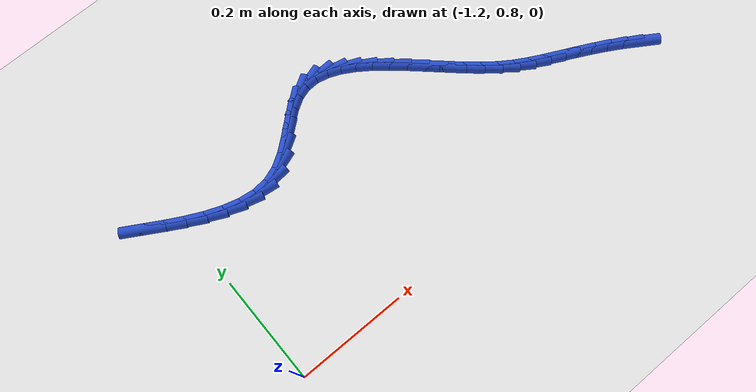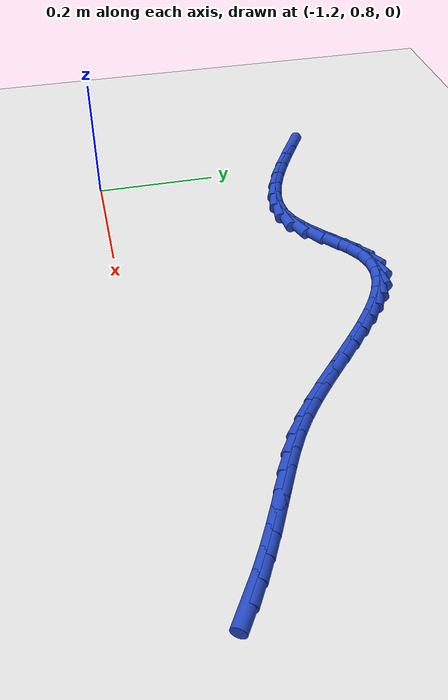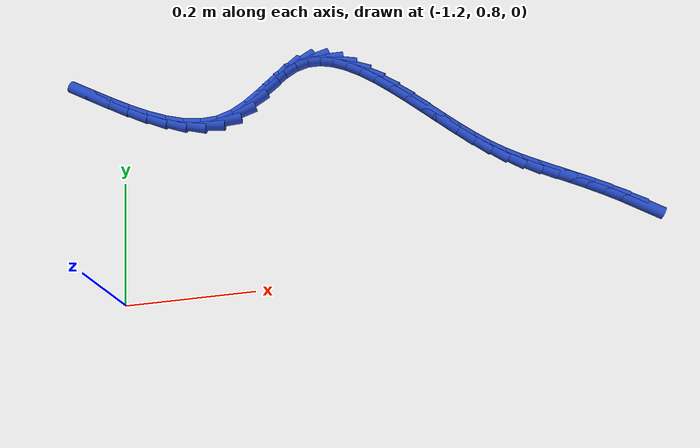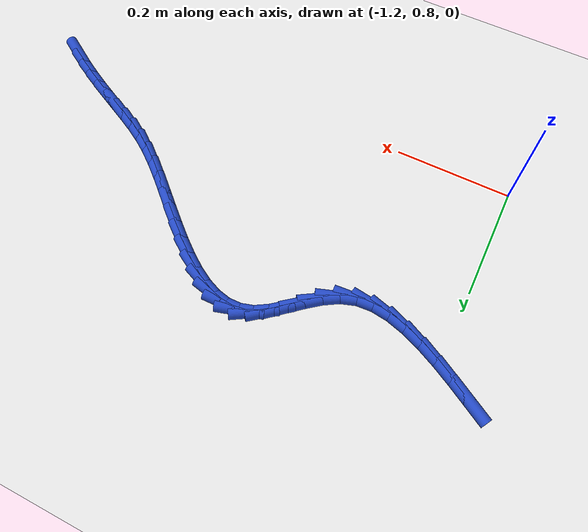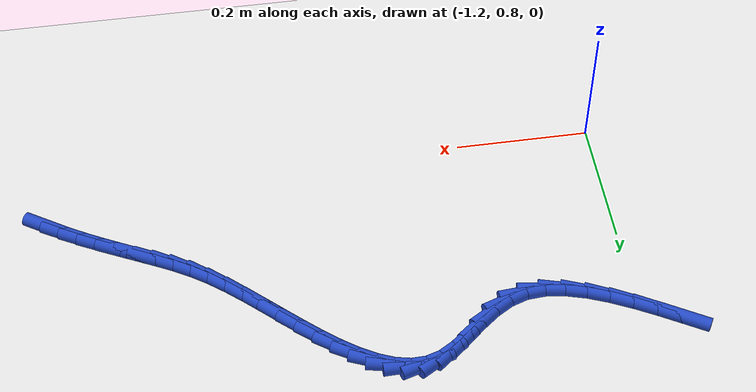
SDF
<sdf version="1.6">
 <world name="default">
  <model name="ground_plane">
   <static>1</static>
   <link name="link">
    <collision name="collision">
     <geometry><plane><normal>0 0 1</normal><size>100 100</size></plane></geometry>
     <surface><friction><ode><mu>100</mu><mu2>50</mu2></ode></friction></surface>
    </collision>
    <visual name="visual">
     <cast_shadows>0</cast_shadows>
     <geometry><plane><normal>0 0 1</normal><size>100 100</size></plane></geometry>
     <material>
      <script><uri>file://media/materials/scripts/gazebo.material</uri><name>Gazebo/WhiteGlow</name></script>
     </material>
    </visual>
   </link>
  </model>
  <model name="line">
   <link name="link_36">
    <pose>-0.3799179649079465 0.8738806881829176 0.01 0 1.57 -0.5674051294833872</pose>
    <collision name="collision">
     <geometry><cylinder><radius>0.01</radius><length>0.08</length></cylinder></geometry>
    </collision>
    <visual name="visual">
     <material>
      <script><name>Gazebo/Blue</name><uri>file://media/materials/scripts/gazebo.material</uri></script>
     </material>
     <geometry><cylinder><radius>0.01</radius><length>0.08</length></cylinder></geometry>
    </visual>
   </link>
   <link name="link_37">
    <pose>-0.40465385329061176 0.8896452080757851 0.01 0 1.57 -0.5234571785244676</pose>
    <collision name="collision">
     <geometry><cylinder><radius>0.01</radius><length>0.08</length></cylinder></geometry>
    </collision>
    <visual name="visual">
     <material>
      <script><name>Gazebo/Blue</name><uri>file://media/materials/scripts/gazebo.material</uri></script>
     </material>
     <geometry><cylinder><radius>0.01</radius><length>0.08</length></cylinder></geometry>
    </visual>
   </link>
   <link name="link_38">
    <pose>-0.4303129833699673 0.90445466978659 0.01 0 1.57 -0.49140213225383594</pose>
    <collision name="collision">
     <geometry><cylinder><radius>0.01</radius><length>0.08</length></cylinder></geometry>
    </collision>
    <visual name="visual">
     <material>
      <script><name>Gazebo/Blue</name><uri>file://media/materials/scripts/gazebo.material</uri></script>
     </material>
     <geometry><cylinder><radius>0.01</radius><length>0.08</length></cylinder></geometry>
    </visual>
   </link>
   <link name="link_39">
    <pose>-0.4564345415509868 0.9184346805827381 0.01 0 1.57 -0.47019734979528466</pose>
    <collision name="collision">
     <geometry><cylinder><radius>0.01</radius><length>0.08</length></cylinder></geometry>
    </collision>
    <visual name="visual">
     <material>
      <script><name>Gazebo/Blue</name><uri>file://media/materials/scripts/gazebo.material</uri></script>
     </material>
     <geometry><cylinder><radius>0.01</radius><length>0.08</length></cylinder></geometry>
    </visual>
   </link>
   <link name="link_40">
    <pose>-0.4825577142386427 0.9317108477316346 0.01 0 1.57 -0.45946007573270226</pose>
    <collision name="collision">
     <geometry><cylinder><radius>0.01</radius><length>0.08</length></cylinder></geometry>
    </collision>
    <visual name="visual">
     <material>
      <script><name>Gazebo/Blue</name><uri>file://media/materials/scripts/gazebo.material</uri></script>
     </material>
     <geometry><cylinder><radius>0.01</radius><length>0.08</length></cylinder></geometry>
    </visual>
   </link>
   <link name="link_41">
    <pose>-0.5082216878379086 0.9444087785006853 0.01 0 1.57 -0.46028715344471816</pose>
    <collision name="collision">
     <geometry><cylinder><radius>0.01</radius><length>0.08</length></cylinder></geometry>
    </collision>
    <visual name="visual">
     <material>
      <script><name>Gazebo/Blue</name><uri>file://media/materials/scripts/gazebo.material</uri></script>
     </material>
     <geometry><cylinder><radius>0.01</radius><length>0.08</length></cylinder></geometry>
    </visual>
   </link>
   <link name="link_42">
    <pose>-0.5330084450096235 0.9566982128504474 0.01 0 1.57 -0.4823046942819314</pose>
    <collision name="collision">
     <geometry><cylinder><radius>0.01</radius><length>0.08</length></cylinder></geometry>
    </collision>
    <visual name="visual">
     <material>
      <script><name>Gazebo/Blue</name><uri>file://media/materials/scripts/gazebo.material</uri></script>
     </material>
     <geometry><cylinder><radius>0.01</radius><length>0.08</length></cylinder></geometry>
    </visual>
   </link>
   <link name="link_43">
    <pose>-0.5569887793671398 0.9692529662345301 0.01 0 1.57 -0.5304118967696</pose>
    <collision name="collision">
     <geometry><cylinder><radius>0.01</radius><length>0.08</length></cylinder></geometry>
    </collision>
    <visual name="visual">
     <material>
      <script><name>Gazebo/Blue</name><uri>file://media/materials/scripts/gazebo.material</uri></script>
     </material>
     <geometry><cylinder><radius>0.01</radius><length>0.08</length></cylinder></geometry>
    </visual>
   </link>
   <link name="link_44">
    <pose>-0.5805447659667639 0.9830678562159035 0.01 0 1.57 -0.5993380845933235</pose>
    <collision name="collision">
     <geometry><cylinder><radius>0.01</radius><length>0.08</length></cylinder></geometry>
    </collision>
    <visual name="visual">
     <material>
      <script><name>Gazebo/Blue</name><uri>file://media/materials/scripts/gazebo.material</uri></script>
     </material>
     <geometry><cylinder><radius>0.01</radius><length>0.08</length></cylinder></geometry>
    </visual>
   </link>
   <link name="link_45">
    <pose>-0.6040610722466377 0.9991333860037775 0.01 0 1.57 -0.667412638063135</pose>
    <collision name="collision">
     <geometry><cylinder><radius>0.01</radius><length>0.08</length></cylinder></geometry>
    </collision>
    <visual name="visual">
     <material>
      <script><name>Gazebo/Blue</name><uri>file://media/materials/scripts/gazebo.material</uri></script>
     </material>
     <geometry><cylinder><radius>0.01</radius><length>0.08</length></cylinder></geometry>
    </visual>
   </link>
   <link name="link_46">
    <pose>-0.6277620611789947 1.0178109839294376 0.01 0 1.57 -0.7133157236568874</pose>
    <collision name="collision">
     <geometry><cylinder><radius>0.01</radius><length>0.08</length></cylinder></geometry>
    </collision>
    <visual name="visual">
     <material>
      <script><name>Gazebo/Blue</name><uri>file://media/materials/scripts/gazebo.material</uri></script>
     </material>
     <geometry><cylinder><radius>0.01</radius><length>0.08</length></cylinder></geometry>
    </visual>
   </link>
   <link name="link_47">
    <pose>-0.6516143502089071 1.038450620314482 0.01 0 1.57 -0.739876196833175</pose>
    <collision name="collision">
     <geometry><cylinder><radius>0.01</radius><length>0.08</length></cylinder></geometry>
    </collision>
    <visual name="visual">
     <material>
      <script><name>Gazebo/Blue</name><uri>file://media/materials/scripts/gazebo.material</uri></script>
     </material>
     <geometry><cylinder><radius>0.01</radius><length>0.08</length></cylinder></geometry>
    </visual>
   </link>
   <link name="link_48">
    <pose>-0.6755612646709673 1.0603108614046814 0.01 0 1.57 -0.7498927699195483</pose>
    <collision name="collision">
     <geometry><cylinder><radius>0.01</radius><length>0.08</length></cylinder></geometry>
    </collision>
    <visual name="visual">
     <material>
      <script><name>Gazebo/Blue</name><uri>file://media/materials/scripts/gazebo.material</uri></script>
     </material>
     <geometry><cylinder><radius>0.01</radius><length>0.08</length></cylinder></geometry>
    </visual>
   </link>
   <link name="link_49">
    <pose>-0.6995461298997675 1.0826502734458059 0.01 0 1.57 -0.7443947227776282</pose>
    <collision name="collision">
     <geometry><cylinder><radius>0.01</radius><length>0.08</length></cylinder></geometry>
    </collision>
    <visual name="visual">
     <material>
      <script><name>Gazebo/Blue</name><uri>file://media/materials/scripts/gazebo.material</uri></script>
     </material>
     <geometry><cylinder><radius>0.01</radius><length>0.08</length></cylinder></geometry>
    </visual>
   </link>
   <link name="link_50">
    <pose>-0.7235122712298993 1.1047274226836252 0.01 0 1.57 -0.7228236638282604</pose>
    <collision name="collision">
     <geometry><cylinder><radius>0.01</radius><length>0.08</length></cylinder></geometry>
    </collision>
    <visual name="visual">
     <material>
      <script><name>Gazebo/Blue</name><uri>file://media/materials/scripts/gazebo.material</uri></script>
     </material>
     <geometry><cylinder><radius>0.01</radius><length>0.08</length></cylinder></geometry>
    </visual>
   </link>
   <link name="link_51">
    <pose>-0.7474030139959547 1.1258008753639097 0.01 0 1.57 -0.6829349419545444</pose>
    <collision name="collision">
     <geometry><cylinder><radius>0.01</radius><length>0.08</length></cylinder></geometry>
    </collision>
    <visual name="visual">
     <material>
      <script><name>Gazebo/Blue</name><uri>file://media/materials/scripts/gazebo.material</uri></script>
     </material>
     <geometry><cylinder><radius>0.01</radius><length>0.08</length></cylinder></geometry>
    </visual>
   </link>
   <link name="link_52">
    <pose>-0.7711616835325255 1.1451291977324305 0.01 0 1.57 -0.6204208351398596</pose>
    <collision name="collision">
     <geometry><cylinder><radius>0.01</radius><length>0.08</length></cylinder></geometry>
    </collision>
    <visual name="visual">
     <material>
      <script><name>Gazebo/Blue</name><uri>file://media/materials/scripts/gazebo.material</uri></script>
     </material>
     <geometry><cylinder><radius>0.01</radius><length>0.08</length></cylinder></geometry>
    </visual>
   </link>
   <link name="link_53">
    <pose>-0.794731605174204 1.161970956034957 0.01 0 1.57 -0.5283240076845835</pose>
    <collision name="collision">
     <geometry><cylinder><radius>0.01</radius><length>0.08</length></cylinder></geometry>
    </collision>
    <visual name="visual">
     <material>
      <script><name>Gazebo/Blue</name><uri>file://media/materials/scripts/gazebo.material</uri></script>
     </material>
     <geometry><cylinder><radius>0.01</radius><length>0.08</length></cylinder></geometry>
    </visual>
   </link>
   <link name="link_54">
    <pose>-0.8180561042555821 1.1755847165172597 0.01 0 1.57 -0.39670161299615847</pose>
    <collision name="collision">
     <geometry><cylinder><radius>0.01</radius><length>0.08</length></cylinder></geometry>
    </collision>
    <visual name="visual">
     <material>
      <script><name>Gazebo/Blue</name><uri>file://media/materials/scripts/gazebo.material</uri></script>
     </material>
     <geometry><cylinder><radius>0.01</radius><length>0.08</length></cylinder></geometry>
    </visual>
   </link>
   <link name="link_55">
    <pose>-0.8410785061112516 1.1852290454251082 0.01 0 1.57 -0.21433821414498522</pose>
    <collision name="collision">
     <geometry><cylinder><radius>0.01</radius><length>0.08</length></cylinder></geometry>
    </collision>
    <visual name="visual">
     <material>
      <script><name>Gazebo/Blue</name><uri>file://media/materials/scripts/gazebo.material</uri></script>
     </material>
     <geometry><cylinder><radius>0.01</radius><length>0.08</length></cylinder></geometry>
    </visual>
   </link>
   <link name="link_56">
    <pose>-0.8637421360758044 1.1901625090042742 0.01 0 1.57 0.023316127460977106</pose>
    <collision name="collision">
     <geometry><cylinder><radius>0.01</radius><length>0.08</length></cylinder></geometry>
    </collision>
    <visual name="visual">
     <material>
      <script><name>Gazebo/Blue</name><uri>file://media/materials/scripts/gazebo.material</uri></script>
     </material>
     <geometry><cylinder><radius>0.01</radius><length>0.08</length></cylinder></geometry>
    </visual>
   </link>
   <link name="link_57">
    <pose>-0.8859903194838331 1.1896436735005274 0.01 0 1.57 0.29900089032532334</pose>
    <collision name="collision">
     <geometry><cylinder><radius>0.01</radius><length>0.08</length></cylinder></geometry>
    </collision>
    <visual name="visual">
     <material>
      <script><name>Gazebo/Blue</name><uri>file://media/materials/scripts/gazebo.material</uri></script>
     </material>
     <geometry><cylinder><radius>0.01</radius><length>0.08</length></cylinder></geometry>
    </visual>
   </link>
   <link name="link_58">
    <pose>-0.9077664234146512 1.1829313664147667 0.01 0 1.57 0.54584681754813</pose>
    <collision name="collision">
     <geometry><cylinder><radius>0.01</radius><length>0.08</length></cylinder></geometry>
    </collision>
    <visual name="visual">
     <material>
      <script><name>Gazebo/Blue</name><uri>file://media/materials/scripts/gazebo.material</uri></script>
     </material>
     <geometry><cylinder><radius>0.01</radius><length>0.08</length></cylinder></geometry>
    </visual>
   </link>
   <link name="link_59">
    <pose>-0.9291217661906565 1.1699600171989704 0.01 0 1.57 0.6774727995125979</pose>
    <collision name="collision">
     <geometry><cylinder><radius>0.01</radius><length>0.08</length></cylinder></geometry>
    </collision>
    <visual name="visual">
     <material>
      <script><name>Gazebo/Blue</name><uri>file://media/materials/scripts/gazebo.material</uri></script>
     </material>
     <geometry><cylinder><radius>0.01</radius><length>0.08</length></cylinder></geometry>
    </visual>
   </link>
   <link name="link_60">
    <pose>-0.9504493129809032 1.1528022175864423 0.01 0 1.57 0.71385148640333</pose>
    <collision name="collision">
     <geometry><cylinder><radius>0.01</radius><length>0.08</length></cylinder></geometry>
    </collision>
    <visual name="visual">
     <material>
      <script><name>Gazebo/Blue</name><uri>file://media/materials/scripts/gazebo.material</uri></script>
     </material>
     <geometry><cylinder><radius>0.01</radius><length>0.08</length></cylinder></geometry>
    </visual>
   </link>
   <link name="link_61">
    <pose>-0.9722094553628684 1.1339525406771058 0.01 0 1.57 0.6727047875825343</pose>
    <collision name="collision">
     <geometry><cylinder><radius>0.01</radius><length>0.08</length></cylinder></geometry>
    </collision>
    <visual name="visual">
     <material>
      <script><name>Gazebo/Blue</name><uri>file://media/materials/scripts/gazebo.material</uri></script>
     </material>
     <geometry><cylinder><radius>0.01</radius><length>0.08</length></cylinder></geometry>
    </visual>
   </link>
   <link name="link_62">
    <pose>-0.9948625849140289 1.1159055595708856 0.01 0 1.57 0.5509439379543355</pose>
    <collision name="collision">
     <geometry><cylinder><radius>0.01</radius><length>0.08</length></cylinder></geometry>
    </collision>
    <visual name="visual">
     <material>
      <script><name>Gazebo/Blue</name><uri>file://media/materials/scripts/gazebo.material</uri></script>
     </material>
     <geometry><cylinder><radius>0.01</radius><length>0.08</length></cylinder></geometry>
    </visual>
   </link>
   <link name="link_63">
    <pose>-1.0188690932118623 1.1011558473677054 0.01 0 1.57 0.3350697430768753</pose>
    <collision name="collision">
     <geometry><cylinder><radius>0.01</radius><length>0.08</length></cylinder></geometry>
    </collision>
    <visual name="visual">
     <material>
      <script><name>Gazebo/Blue</name><uri>file://media/materials/scripts/gazebo.material</uri></script>
     </material>
     <geometry><cylinder><radius>0.01</radius><length>0.08</length></cylinder></geometry>
    </visual>
   </link>
   <link name="link_64">
    <pose>-1.0446817697886193 1.0921678911458852 0.01 0 1.57 0.07789485446807431</pose>
    <collision name="collision">
     <geometry><cylinder><radius>0.01</radius><length>0.08</length></cylinder></geometry>
    </collision>
    <visual name="visual">
     <material>
      <script><name>Gazebo/Blue</name><uri>file://media/materials/scripts/gazebo.material</uri></script>
     </material>
     <geometry><cylinder><radius>0.01</radius><length>0.08</length></cylinder></geometry>
    </visual>
   </link>
   <link name="link_65">
    <pose>-1.0723992239979772 1.0900044667089737 0.01 0 1.57 -0.12782673160292443</pose>
    <collision name="collision">
     <geometry><cylinder><radius>0.01</radius><length>0.08</length></cylinder></geometry>
    </collision>
    <visual name="visual">
     <material>
      <script><name>Gazebo/Blue</name><uri>file://media/materials/scripts/gazebo.material</uri></script>
     </material>
     <geometry><cylinder><radius>0.01</radius><length>0.08</length></cylinder></geometry>
    </visual>
   </link>
   <link name="link_66">
    <pose>-1.1016228361733886 1.0937605053396853 0.01 0 1.57 -0.27731115150554414</pose>
    <collision name="collision">
     <geometry><cylinder><radius>0.01</radius><length>0.08</length></cylinder></geometry>
    </collision>
    <visual name="visual">
     <material>
      <script><name>Gazebo/Blue</name><uri>file://media/materials/scripts/gazebo.material</uri></script>
     </material>
     <geometry><cylinder><radius>0.01</radius><length>0.08</length></cylinder></geometry>
    </visual>
   </link>
   <link name="link_67">
    <pose>-1.1319167386660762 1.1023835248859608 0.01 0 1.57 -0.3823498876096761</pose>
    <collision name="collision">
     <geometry><cylinder><radius>0.01</radius><length>0.08</length></cylinder></geometry>
    </collision>
    <visual name="visual">
     <material>
      <script><name>Gazebo/Blue</name><uri>file://media/materials/scripts/gazebo.material</uri></script>
     </material>
     <geometry><cylinder><radius>0.01</radius><length>0.08</length></cylinder></geometry>
    </visual>
   </link>
   <link name="link_68">
    <pose>-1.1628450638272643 1.1148210431957417 0.01 0 1.57 -0.4542511215402282</pose>
    <collision name="collision">
     <geometry><cylinder><radius>0.01</radius><length>0.08</length></cylinder></geometry>
    </collision>
    <visual name="visual">
     <material>
      <script><name>Gazebo/Blue</name><uri>file://media/materials/scripts/gazebo.material</uri></script>
     </material>
     <geometry><cylinder><radius>0.01</radius><length>0.08</length></cylinder></geometry>
    </visual>
   </link>
   <link name="link_69">
    <pose>-1.1939719440081755 1.130020578116969 0.01 0 1.57 -0.5008478500670691</pose>
    <collision name="collision">
     <geometry><cylinder><radius>0.01</radius><length>0.08</length></cylinder></geometry>
    </collision>
    <visual name="visual">
     <material>
      <script><name>Gazebo/Blue</name><uri>file://media/materials/scripts/gazebo.material</uri></script>
     </material>
     <geometry><cylinder><radius>0.01</radius><length>0.08</length></cylinder></geometry>
    </visual>
   </link>
   <link name="link_70">
    <pose>-1.2248615115600339 1.146929647497584 0.01 0 1.57 -0.5265890483183472</pose>
    <collision name="collision">
     <geometry><cylinder><radius>0.01</radius><length>0.08</length></cylinder></geometry>
    </collision>
    <visual name="visual">
     <material>
      <script><name>Gazebo/Blue</name><uri>file://media/materials/scripts/gazebo.material</uri></script>
     </material>
     <geometry><cylinder><radius>0.01</radius><length>0.08</length></cylinder></geometry>
    </visual>
   </link>
   <link name="link_71">
    <pose>-1.2550778988340623 1.1644957691855278 0.01 0 1.57 -0.5329668700387141</pose>
    <collision name="collision">
     <geometry><cylinder><radius>0.01</radius><length>0.08</length></cylinder></geometry>
    </collision>
    <visual name="visual">
     <material>
      <script><name>Gazebo/Blue</name><uri>file://media/materials/scripts/gazebo.material</uri></script>
     </material>
     <geometry><cylinder><radius>0.01</radius><length>0.08</length></cylinder></geometry>
    </visual>
   </link>
  </model>
 </world>
</sdf>
